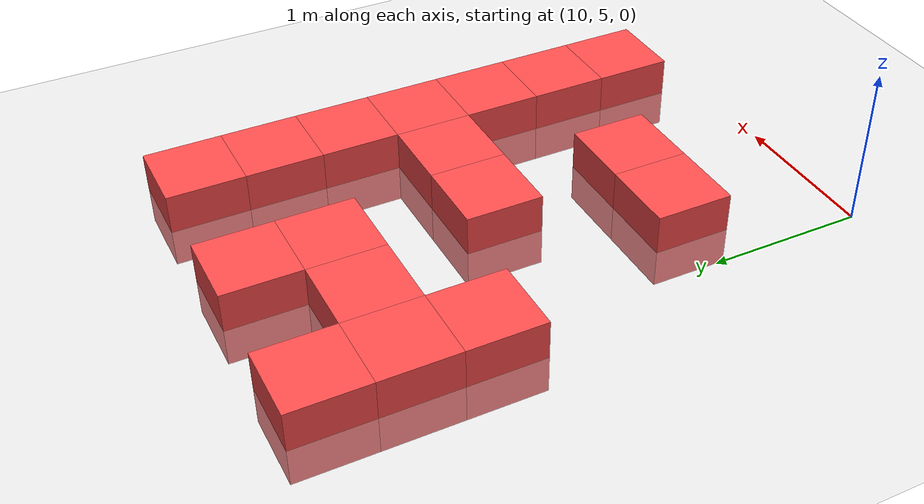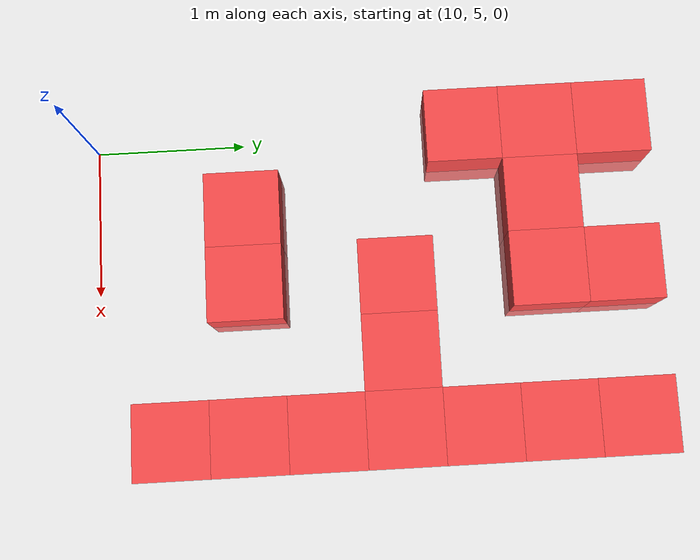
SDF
<sdf version="1.6">
 <world name="default">
  <model name="ground_plane">
   <static>1</static>
   <link name="link">
    <collision name="collision">
     <geometry><plane><normal>0 0 1</normal><size>100 100</size></plane></geometry>
     <surface><friction><ode><mu>100</mu><mu2>50</mu2></ode></friction></surface>
    </collision>
    <visual name="visual">
     <cast_shadows>0</cast_shadows>
     <geometry><plane><normal>0 0 1</normal><size>100 100</size></plane></geometry>
     <material>
      <script><uri>file://media/materials/scripts/gazebo.material</uri><name>Gazebo/Grey</name></script>
     </material>
    </visual>
   </link>
  </model>
  <model name="Box_Red_515">
   <link name="link_0">
    <inertial>
     <mass>1</mass>
     <inertia>
      <ixx>0.166667</ixx>
      <ixy>0</ixy>
      <ixz>0</ixz>
      <iyy>0.166667</iyy>
      <iyz>0</iyz>
      <izz>0.166667</izz>
     </inertia>
    </inertial>
    <visual name="visual">
     <geometry><box><size>0.5 0.5 0.5</size></box></geometry>
     <material>
      <lighting>1</lighting>
      <script><uri>file://media/materials/scripts/gazebo.material</uri><name>Gazebo/Grey</name></script>
      <ambient>1 0.3 0.3 1</ambient>
      <diffuse>0.7 0.7 0.7 1</diffuse>
      <specular>0.01 0.01 0.01 1</specular>
      <emissive>0 0 0 1</emissive>
      <shader type="vertex"><normal_map>__default__</normal_map></shader>
     </material>
    </visual>
    <collision name="collision">
     <geometry><box><size>0.5 0.5 0.5</size></box></geometry>
     <surface>
      <friction>
       <ode><mu>1</mu><mu2>1</mu2><fdir1>0 0 0</fdir1><slip1>0</slip1><slip2>0</slip2></ode>
       <torsional>
        <coefficient>1</coefficient>
        <patch_radius>0</patch_radius>
        <surface_radius>0</surface_radius>
        <use_patch_radius>1</use_patch_radius>
        <ode><slip>0</slip></ode>
       </torsional>
      </friction>
      <bounce><restitution_coefficient>0</restitution_coefficient><threshold>1e+06</threshold></bounce>
      <contact>
       <collide_without_contact>0</collide_without_contact>
       <collide_without_contact_bitmask>1</collide_without_contact_bitmask>
       <collide_bitmask>1</collide_bitmask>
       <ode>
        <soft_cfm>0</soft_cfm>
        <soft_erp>0.2</soft_erp>
        <kp>1e+13</kp>
        <kd>1</kd>
        <max_vel>0.01</max_vel>
        <min_depth>0</min_depth>
       </ode>
       <bullet>
        <split_impulse>1</split_impulse>
        <split_impulse_penetration_threshold>-0.01</split_impulse_penetration_threshold>
        <soft_cfm>0</soft_cfm>
        <soft_erp>0.2</soft_erp>
        <kp>1e+13</kp>
        <kd>1</kd>
       </bullet>
      </contact>
     </surface>
    </collision>
   </link>
   <static>0</static>
   <pose>10.000 7.500 0.000 0 0 0</pose>
  </model>
  <model name="Box_Red_516">
   <link name="link_0">
    <inertial>
     <mass>1</mass>
     <inertia>
      <ixx>0.166667</ixx>
      <ixy>0</ixy>
      <ixz>0</ixz>
      <iyy>0.166667</iyy>
      <iyz>0</iyz>
      <izz>0.166667</izz>
     </inertia>
    </inertial>
    <visual name="visual">
     <geometry><box><size>0.5 0.5 0.5</size></box></geometry>
     <material>
      <lighting>1</lighting>
      <script><uri>file://media/materials/scripts/gazebo.material</uri><name>Gazebo/Grey</name></script>
      <ambient>1 0.3 0.3 1</ambient>
      <diffuse>0.7 0.7 0.7 1</diffuse>
      <specular>0.01 0.01 0.01 1</specular>
      <emissive>0 0 0 1</emissive>
      <shader type="vertex"><normal_map>__default__</normal_map></shader>
     </material>
    </visual>
    <collision name="collision">
     <geometry><box><size>0.5 0.5 0.5</size></box></geometry>
     <surface>
      <friction>
       <ode><mu>1</mu><mu2>1</mu2><fdir1>0 0 0</fdir1><slip1>0</slip1><slip2>0</slip2></ode>
       <torsional>
        <coefficient>1</coefficient>
        <patch_radius>0</patch_radius>
        <surface_radius>0</surface_radius>
        <use_patch_radius>1</use_patch_radius>
        <ode><slip>0</slip></ode>
       </torsional>
      </friction>
      <bounce><restitution_coefficient>0</restitution_coefficient><threshold>1e+06</threshold></bounce>
      <contact>
       <collide_without_contact>0</collide_without_contact>
       <collide_without_contact_bitmask>1</collide_without_contact_bitmask>
       <collide_bitmask>1</collide_bitmask>
       <ode>
        <soft_cfm>0</soft_cfm>
        <soft_erp>0.2</soft_erp>
        <kp>1e+13</kp>
        <kd>1</kd>
        <max_vel>0.01</max_vel>
        <min_depth>0</min_depth>
       </ode>
       <bullet>
        <split_impulse>1</split_impulse>
        <split_impulse_penetration_threshold>-0.01</split_impulse_penetration_threshold>
        <soft_cfm>0</soft_cfm>
        <soft_erp>0.2</soft_erp>
        <kp>1e+13</kp>
        <kd>1</kd>
       </bullet>
      </contact>
     </surface>
    </collision>
   </link>
   <static>0</static>
   <pose>10.000 8.000 0.000 0 0 0</pose>
  </model>
  <model name="Box_Red_517">
   <link name="link_0">
    <inertial>
     <mass>1</mass>
     <inertia>
      <ixx>0.166667</ixx>
      <ixy>0</ixy>
      <ixz>0</ixz>
      <iyy>0.166667</iyy>
      <iyz>0</iyz>
      <izz>0.166667</izz>
     </inertia>
    </inertial>
    <visual name="visual">
     <geometry><box><size>0.5 0.5 0.5</size></box></geometry>
     <material>
      <lighting>1</lighting>
      <script><uri>file://media/materials/scripts/gazebo.material</uri><name>Gazebo/Grey</name></script>
      <ambient>1 0.3 0.3 1</ambient>
      <diffuse>0.7 0.7 0.7 1</diffuse>
      <specular>0.01 0.01 0.01 1</specular>
      <emissive>0 0 0 1</emissive>
      <shader type="vertex"><normal_map>__default__</normal_map></shader>
     </material>
    </visual>
    <collision name="collision">
     <geometry><box><size>0.5 0.5 0.5</size></box></geometry>
     <surface>
      <friction>
       <ode><mu>1</mu><mu2>1</mu2><fdir1>0 0 0</fdir1><slip1>0</slip1><slip2>0</slip2></ode>
       <torsional>
        <coefficient>1</coefficient>
        <patch_radius>0</patch_radius>
        <surface_radius>0</surface_radius>
        <use_patch_radius>1</use_patch_radius>
        <ode><slip>0</slip></ode>
       </torsional>
      </friction>
      <bounce><restitution_coefficient>0</restitution_coefficient><threshold>1e+06</threshold></bounce>
      <contact>
       <collide_without_contact>0</collide_without_contact>
       <collide_without_contact_bitmask>1</collide_without_contact_bitmask>
       <collide_bitmask>1</collide_bitmask>
       <ode>
        <soft_cfm>0</soft_cfm>
        <soft_erp>0.2</soft_erp>
        <kp>1e+13</kp>
        <kd>1</kd>
        <max_vel>0.01</max_vel>
        <min_depth>0</min_depth>
       </ode>
       <bullet>
        <split_impulse>1</split_impulse>
        <split_impulse_penetration_threshold>-0.01</split_impulse_penetration_threshold>
        <soft_cfm>0</soft_cfm>
        <soft_erp>0.2</soft_erp>
        <kp>1e+13</kp>
        <kd>1</kd>
       </bullet>
      </contact>
     </surface>
    </collision>
   </link>
   <static>0</static>
   <pose>10.000 8.500 0.000 0 0 0</pose>
  </model>
  <model name="Box_Red_537">
   <link name="link_0">
    <inertial>
     <mass>1</mass>
     <inertia>
      <ixx>0.166667</ixx>
      <ixy>0</ixy>
      <ixz>0</ixz>
      <iyy>0.166667</iyy>
      <iyz>0</iyz>
      <izz>0.166667</izz>
     </inertia>
    </inertial>
    <visual name="visual">
     <geometry><box><size>0.5 0.5 0.5</size></box></geometry>
     <material>
      <lighting>1</lighting>
      <script><uri>file://media/materials/scripts/gazebo.material</uri><name>Gazebo/Grey</name></script>
      <ambient>1 0.3 0.3 1</ambient>
      <diffuse>0.7 0.7 0.7 1</diffuse>
      <specular>0.01 0.01 0.01 1</specular>
      <emissive>0 0 0 1</emissive>
      <shader type="vertex"><normal_map>__default__</normal_map></shader>
     </material>
    </visual>
    <collision name="collision">
     <geometry><box><size>0.5 0.5 0.5</size></box></geometry>
     <surface>
      <friction>
       <ode><mu>1</mu><mu2>1</mu2><fdir1>0 0 0</fdir1><slip1>0</slip1><slip2>0</slip2></ode>
       <torsional>
        <coefficient>1</coefficient>
        <patch_radius>0</patch_radius>
        <surface_radius>0</surface_radius>
        <use_patch_radius>1</use_patch_radius>
        <ode><slip>0</slip></ode>
       </torsional>
      </friction>
      <bounce><restitution_coefficient>0</restitution_coefficient><threshold>1e+06</threshold></bounce>
      <contact>
       <collide_without_contact>0</collide_without_contact>
       <collide_without_contact_bitmask>1</collide_without_contact_bitmask>
       <collide_bitmask>1</collide_bitmask>
       <ode>
        <soft_cfm>0</soft_cfm>
        <soft_erp>0.2</soft_erp>
        <kp>1e+13</kp>
        <kd>1</kd>
        <max_vel>0.01</max_vel>
        <min_depth>0</min_depth>
       </ode>
       <bullet>
        <split_impulse>1</split_impulse>
        <split_impulse_penetration_threshold>-0.01</split_impulse_penetration_threshold>
        <soft_cfm>0</soft_cfm>
        <soft_erp>0.2</soft_erp>
        <kp>1e+13</kp>
        <kd>1</kd>
       </bullet>
      </contact>
     </surface>
    </collision>
   </link>
   <static>0</static>
   <pose>10.500 6.000 0.000 0 0 0</pose>
  </model>
  <model name="Box_Red_541">
   <link name="link_0">
    <inertial>
     <mass>1</mass>
     <inertia>
      <ixx>0.166667</ixx>
      <ixy>0</ixy>
      <ixz>0</ixz>
      <iyy>0.166667</iyy>
      <iyz>0</iyz>
      <izz>0.166667</izz>
     </inertia>
    </inertial>
    <visual name="visual">
     <geometry><box><size>0.5 0.5 0.5</size></box></geometry>
     <material>
      <lighting>1</lighting>
      <script><uri>file://media/materials/scripts/gazebo.material</uri><name>Gazebo/Grey</name></script>
      <ambient>1 0.3 0.3 1</ambient>
      <diffuse>0.7 0.7 0.7 1</diffuse>
      <specular>0.01 0.01 0.01 1</specular>
      <emissive>0 0 0 1</emissive>
      <shader type="vertex"><normal_map>__default__</normal_map></shader>
     </material>
    </visual>
    <collision name="collision">
     <geometry><box><size>0.5 0.5 0.5</size></box></geometry>
     <surface>
      <friction>
       <ode><mu>1</mu><mu2>1</mu2><fdir1>0 0 0</fdir1><slip1>0</slip1><slip2>0</slip2></ode>
       <torsional>
        <coefficient>1</coefficient>
        <patch_radius>0</patch_radius>
        <surface_radius>0</surface_radius>
        <use_patch_radius>1</use_patch_radius>
        <ode><slip>0</slip></ode>
       </torsional>
      </friction>
      <bounce><restitution_coefficient>0</restitution_coefficient><threshold>1e+06</threshold></bounce>
      <contact>
       <collide_without_contact>0</collide_without_contact>
       <collide_without_contact_bitmask>1</collide_without_contact_bitmask>
       <collide_bitmask>1</collide_bitmask>
       <ode>
        <soft_cfm>0</soft_cfm>
        <soft_erp>0.2</soft_erp>
        <kp>1e+13</kp>
        <kd>1</kd>
        <max_vel>0.01</max_vel>
        <min_depth>0</min_depth>
       </ode>
       <bullet>
        <split_impulse>1</split_impulse>
        <split_impulse_penetration_threshold>-0.01</split_impulse_penetration_threshold>
        <soft_cfm>0</soft_cfm>
        <soft_erp>0.2</soft_erp>
        <kp>1e+13</kp>
        <kd>1</kd>
       </bullet>
      </contact>
     </surface>
    </collision>
   </link>
   <static>0</static>
   <pose>10.500 8.000 0.000 0 0 0</pose>
  </model>
  <model name="Box_Red_562">
   <link name="link_0">
    <inertial>
     <mass>1</mass>
     <inertia>
      <ixx>0.166667</ixx>
      <ixy>0</ixy>
      <ixz>0</ixz>
      <iyy>0.166667</iyy>
      <iyz>0</iyz>
      <izz>0.166667</izz>
     </inertia>
    </inertial>
    <visual name="visual">
     <geometry><box><size>0.5 0.5 0.5</size></box></geometry>
     <material>
      <lighting>1</lighting>
      <script><uri>file://media/materials/scripts/gazebo.material</uri><name>Gazebo/Grey</name></script>
      <ambient>1 0.3 0.3 1</ambient>
      <diffuse>0.7 0.7 0.7 1</diffuse>
      <specular>0.01 0.01 0.01 1</specular>
      <emissive>0 0 0 1</emissive>
      <shader type="vertex"><normal_map>__default__</normal_map></shader>
     </material>
    </visual>
    <collision name="collision">
     <geometry><box><size>0.5 0.5 0.5</size></box></geometry>
     <surface>
      <friction>
       <ode><mu>1</mu><mu2>1</mu2><fdir1>0 0 0</fdir1><slip1>0</slip1><slip2>0</slip2></ode>
       <torsional>
        <coefficient>1</coefficient>
        <patch_radius>0</patch_radius>
        <surface_radius>0</surface_radius>
        <use_patch_radius>1</use_patch_radius>
        <ode><slip>0</slip></ode>
       </torsional>
      </friction>
      <bounce><restitution_coefficient>0</restitution_coefficient><threshold>1e+06</threshold></bounce>
      <contact>
       <collide_without_contact>0</collide_without_contact>
       <collide_without_contact_bitmask>1</collide_without_contact_bitmask>
       <collide_bitmask>1</collide_bitmask>
       <ode>
        <soft_cfm>0</soft_cfm>
        <soft_erp>0.2</soft_erp>
        <kp>1e+13</kp>
        <kd>1</kd>
        <max_vel>0.01</max_vel>
        <min_depth>0</min_depth>
       </ode>
       <bullet>
        <split_impulse>1</split_impulse>
        <split_impulse_penetration_threshold>-0.01</split_impulse_penetration_threshold>
        <soft_cfm>0</soft_cfm>
        <soft_erp>0.2</soft_erp>
        <kp>1e+13</kp>
        <kd>1</kd>
       </bullet>
      </contact>
     </surface>
    </collision>
   </link>
   <static>0</static>
   <pose>11.000 6.000 0.000 0 0 0</pose>
  </model>
  <model name="Box_Red_564">
   <link name="link_0">
    <inertial>
     <mass>1</mass>
     <inertia>
      <ixx>0.166667</ixx>
      <ixy>0</ixy>
      <ixz>0</ixz>
      <iyy>0.166667</iyy>
      <iyz>0</iyz>
      <izz>0.166667</izz>
     </inertia>
    </inertial>
    <visual name="visual">
     <geometry><box><size>0.5 0.5 0.5</size></box></geometry>
     <material>
      <lighting>1</lighting>
      <script><uri>file://media/materials/scripts/gazebo.material</uri><name>Gazebo/Grey</name></script>
      <ambient>1 0.3 0.3 1</ambient>
      <diffuse>0.7 0.7 0.7 1</diffuse>
      <specular>0.01 0.01 0.01 1</specular>
      <emissive>0 0 0 1</emissive>
      <shader type="vertex"><normal_map>__default__</normal_map></shader>
     </material>
    </visual>
    <collision name="collision">
     <geometry><box><size>0.5 0.5 0.5</size></box></geometry>
     <surface>
      <friction>
       <ode><mu>1</mu><mu2>1</mu2><fdir1>0 0 0</fdir1><slip1>0</slip1><slip2>0</slip2></ode>
       <torsional>
        <coefficient>1</coefficient>
        <patch_radius>0</patch_radius>
        <surface_radius>0</surface_radius>
        <use_patch_radius>1</use_patch_radius>
        <ode><slip>0</slip></ode>
       </torsional>
      </friction>
      <bounce><restitution_coefficient>0</restitution_coefficient><threshold>1e+06</threshold></bounce>
      <contact>
       <collide_without_contact>0</collide_without_contact>
       <collide_without_contact_bitmask>1</collide_without_contact_bitmask>
       <collide_bitmask>1</collide_bitmask>
       <ode>
        <soft_cfm>0</soft_cfm>
        <soft_erp>0.2</soft_erp>
        <kp>1e+13</kp>
        <kd>1</kd>
        <max_vel>0.01</max_vel>
        <min_depth>0</min_depth>
       </ode>
       <bullet>
        <split_impulse>1</split_impulse>
        <split_impulse_penetration_threshold>-0.01</split_impulse_penetration_threshold>
        <soft_cfm>0</soft_cfm>
        <soft_erp>0.2</soft_erp>
        <kp>1e+13</kp>
        <kd>1</kd>
       </bullet>
      </contact>
     </surface>
    </collision>
   </link>
   <static>0</static>
   <pose>11.000 7.000 0.000 0 0 0</pose>
  </model>
  <model name="Box_Red_566">
   <link name="link_0">
    <inertial>
     <mass>1</mass>
     <inertia>
      <ixx>0.166667</ixx>
      <ixy>0</ixy>
      <ixz>0</ixz>
      <iyy>0.166667</iyy>
      <iyz>0</iyz>
      <izz>0.166667</izz>
     </inertia>
    </inertial>
    <visual name="visual">
     <geometry><box><size>0.5 0.5 0.5</size></box></geometry>
     <material>
      <lighting>1</lighting>
      <script><uri>file://media/materials/scripts/gazebo.material</uri><name>Gazebo/Grey</name></script>
      <ambient>1 0.3 0.3 1</ambient>
      <diffuse>0.7 0.7 0.7 1</diffuse>
      <specular>0.01 0.01 0.01 1</specular>
      <emissive>0 0 0 1</emissive>
      <shader type="vertex"><normal_map>__default__</normal_map></shader>
     </material>
    </visual>
    <collision name="collision">
     <geometry><box><size>0.5 0.5 0.5</size></box></geometry>
     <surface>
      <friction>
       <ode><mu>1</mu><mu2>1</mu2><fdir1>0 0 0</fdir1><slip1>0</slip1><slip2>0</slip2></ode>
       <torsional>
        <coefficient>1</coefficient>
        <patch_radius>0</patch_radius>
        <surface_radius>0</surface_radius>
        <use_patch_radius>1</use_patch_radius>
        <ode><slip>0</slip></ode>
       </torsional>
      </friction>
      <bounce><restitution_coefficient>0</restitution_coefficient><threshold>1e+06</threshold></bounce>
      <contact>
       <collide_without_contact>0</collide_without_contact>
       <collide_without_contact_bitmask>1</collide_without_contact_bitmask>
       <collide_bitmask>1</collide_bitmask>
       <ode>
        <soft_cfm>0</soft_cfm>
        <soft_erp>0.2</soft_erp>
        <kp>1e+13</kp>
        <kd>1</kd>
        <max_vel>0.01</max_vel>
        <min_depth>0</min_depth>
       </ode>
       <bullet>
        <split_impulse>1</split_impulse>
        <split_impulse_penetration_threshold>-0.01</split_impulse_penetration_threshold>
        <soft_cfm>0</soft_cfm>
        <soft_erp>0.2</soft_erp>
        <kp>1e+13</kp>
        <kd>1</kd>
       </bullet>
      </contact>
     </surface>
    </collision>
   </link>
   <static>0</static>
   <pose>11.000 8.000 0.000 0 0 0</pose>
  </model>
  <model name="Box_Red_567">
   <link name="link_0">
    <inertial>
     <mass>1</mass>
     <inertia>
      <ixx>0.166667</ixx>
      <ixy>0</ixy>
      <ixz>0</ixz>
      <iyy>0.166667</iyy>
      <iyz>0</iyz>
      <izz>0.166667</izz>
     </inertia>
    </inertial>
    <visual name="visual">
     <geometry><box><size>0.5 0.5 0.5</size></box></geometry>
     <material>
      <lighting>1</lighting>
      <script><uri>file://media/materials/scripts/gazebo.material</uri><name>Gazebo/Grey</name></script>
      <ambient>1 0.3 0.3 1</ambient>
      <diffuse>0.7 0.7 0.7 1</diffuse>
      <specular>0.01 0.01 0.01 1</specular>
      <emissive>0 0 0 1</emissive>
      <shader type="vertex"><normal_map>__default__</normal_map></shader>
     </material>
    </visual>
    <collision name="collision">
     <geometry><box><size>0.5 0.5 0.5</size></box></geometry>
     <surface>
      <friction>
       <ode><mu>1</mu><mu2>1</mu2><fdir1>0 0 0</fdir1><slip1>0</slip1><slip2>0</slip2></ode>
       <torsional>
        <coefficient>1</coefficient>
        <patch_radius>0</patch_radius>
        <surface_radius>0</surface_radius>
        <use_patch_radius>1</use_patch_radius>
        <ode><slip>0</slip></ode>
       </torsional>
      </friction>
      <bounce><restitution_coefficient>0</restitution_coefficient><threshold>1e+06</threshold></bounce>
      <contact>
       <collide_without_contact>0</collide_without_contact>
       <collide_without_contact_bitmask>1</collide_without_contact_bitmask>
       <collide_bitmask>1</collide_bitmask>
       <ode>
        <soft_cfm>0</soft_cfm>
        <soft_erp>0.2</soft_erp>
        <kp>1e+13</kp>
        <kd>1</kd>
        <max_vel>0.01</max_vel>
        <min_depth>0</min_depth>
       </ode>
       <bullet>
        <split_impulse>1</split_impulse>
        <split_impulse_penetration_threshold>-0.01</split_impulse_penetration_threshold>
        <soft_cfm>0</soft_cfm>
        <soft_erp>0.2</soft_erp>
        <kp>1e+13</kp>
        <kd>1</kd>
       </bullet>
      </contact>
     </surface>
    </collision>
   </link>
   <static>0</static>
   <pose>11.000 8.500 0.000 0 0 0</pose>
  </model>
  <model name="Box_Red_589">
   <link name="link_0">
    <inertial>
     <mass>1</mass>
     <inertia>
      <ixx>0.166667</ixx>
      <ixy>0</ixy>
      <ixz>0</ixz>
      <iyy>0.166667</iyy>
      <iyz>0</iyz>
      <izz>0.166667</izz>
     </inertia>
    </inertial>
    <visual name="visual">
     <geometry><box><size>0.5 0.5 0.5</size></box></geometry>
     <material>
      <lighting>1</lighting>
      <script><uri>file://media/materials/scripts/gazebo.material</uri><name>Gazebo/Grey</name></script>
      <ambient>1 0.3 0.3 1</ambient>
      <diffuse>0.7 0.7 0.7 1</diffuse>
      <specular>0.01 0.01 0.01 1</specular>
      <emissive>0 0 0 1</emissive>
      <shader type="vertex"><normal_map>__default__</normal_map></shader>
     </material>
    </visual>
    <collision name="collision">
     <geometry><box><size>0.5 0.5 0.5</size></box></geometry>
     <surface>
      <friction>
       <ode><mu>1</mu><mu2>1</mu2><fdir1>0 0 0</fdir1><slip1>0</slip1><slip2>0</slip2></ode>
       <torsional>
        <coefficient>1</coefficient>
        <patch_radius>0</patch_radius>
        <surface_radius>0</surface_radius>
        <use_patch_radius>1</use_patch_radius>
        <ode><slip>0</slip></ode>
       </torsional>
      </friction>
      <bounce><restitution_coefficient>0</restitution_coefficient><threshold>1e+06</threshold></bounce>
      <contact>
       <collide_without_contact>0</collide_without_contact>
       <collide_without_contact_bitmask>1</collide_without_contact_bitmask>
       <collide_bitmask>1</collide_bitmask>
       <ode>
        <soft_cfm>0</soft_cfm>
        <soft_erp>0.2</soft_erp>
        <kp>1e+13</kp>
        <kd>1</kd>
        <max_vel>0.01</max_vel>
        <min_depth>0</min_depth>
       </ode>
       <bullet>
        <split_impulse>1</split_impulse>
        <split_impulse_penetration_threshold>-0.01</split_impulse_penetration_threshold>
        <soft_cfm>0</soft_cfm>
        <soft_erp>0.2</soft_erp>
        <kp>1e+13</kp>
        <kd>1</kd>
       </bullet>
      </contact>
     </surface>
    </collision>
   </link>
   <static>0</static>
   <pose>11.500 7.000 0.000 0 0 0</pose>
  </model>
  <model name="Box_Red_611">
   <link name="link_0">
    <inertial>
     <mass>1</mass>
     <inertia>
      <ixx>0.166667</ixx>
      <ixy>0</ixy>
      <ixz>0</ixz>
      <iyy>0.166667</iyy>
      <iyz>0</iyz>
      <izz>0.166667</izz>
     </inertia>
    </inertial>
    <visual name="visual">
     <geometry><box><size>0.5 0.5 0.5</size></box></geometry>
     <material>
      <lighting>1</lighting>
      <script><uri>file://media/materials/scripts/gazebo.material</uri><name>Gazebo/Grey</name></script>
      <ambient>1 0.3 0.3 1</ambient>
      <diffuse>0.7 0.7 0.7 1</diffuse>
      <specular>0.01 0.01 0.01 1</specular>
      <emissive>0 0 0 1</emissive>
      <shader type="vertex"><normal_map>__default__</normal_map></shader>
     </material>
    </visual>
    <collision name="collision">
     <geometry><box><size>0.5 0.5 0.5</size></box></geometry>
     <surface>
      <friction>
       <ode><mu>1</mu><mu2>1</mu2><fdir1>0 0 0</fdir1><slip1>0</slip1><slip2>0</slip2></ode>
       <torsional>
        <coefficient>1</coefficient>
        <patch_radius>0</patch_radius>
        <surface_radius>0</surface_radius>
        <use_patch_radius>1</use_patch_radius>
        <ode><slip>0</slip></ode>
       </torsional>
      </friction>
      <bounce><restitution_coefficient>0</restitution_coefficient><threshold>1e+06</threshold></bounce>
      <contact>
       <collide_without_contact>0</collide_without_contact>
       <collide_without_contact_bitmask>1</collide_without_contact_bitmask>
       <collide_bitmask>1</collide_bitmask>
       <ode>
        <soft_cfm>0</soft_cfm>
        <soft_erp>0.2</soft_erp>
        <kp>1e+13</kp>
        <kd>1</kd>
        <max_vel>0.01</max_vel>
        <min_depth>0</min_depth>
       </ode>
       <bullet>
        <split_impulse>1</split_impulse>
        <split_impulse_penetration_threshold>-0.01</split_impulse_penetration_threshold>
        <soft_cfm>0</soft_cfm>
        <soft_erp>0.2</soft_erp>
        <kp>1e+13</kp>
        <kd>1</kd>
       </bullet>
      </contact>
     </surface>
    </collision>
   </link>
   <static>0</static>
   <pose>12.000 5.500 0.000 0 0 0</pose>
  </model>
  <model name="Box_Red_612">
   <link name="link_0">
    <inertial>
     <mass>1</mass>
     <inertia>
      <ixx>0.166667</ixx>
      <ixy>0</ixy>
      <ixz>0</ixz>
      <iyy>0.166667</iyy>
      <iyz>0</iyz>
      <izz>0.166667</izz>
     </inertia>
    </inertial>
    <visual name="visual">
     <geometry><box><size>0.5 0.5 0.5</size></box></geometry>
     <material>
      <lighting>1</lighting>
      <script><uri>file://media/materials/scripts/gazebo.material</uri><name>Gazebo/Grey</name></script>
      <ambient>1 0.3 0.3 1</ambient>
      <diffuse>0.7 0.7 0.7 1</diffuse>
      <specular>0.01 0.01 0.01 1</specular>
      <emissive>0 0 0 1</emissive>
      <shader type="vertex"><normal_map>__default__</normal_map></shader>
     </material>
    </visual>
    <collision name="collision">
     <geometry><box><size>0.5 0.5 0.5</size></box></geometry>
     <surface>
      <friction>
       <ode><mu>1</mu><mu2>1</mu2><fdir1>0 0 0</fdir1><slip1>0</slip1><slip2>0</slip2></ode>
       <torsional>
        <coefficient>1</coefficient>
        <patch_radius>0</patch_radius>
        <surface_radius>0</surface_radius>
        <use_patch_radius>1</use_patch_radius>
        <ode><slip>0</slip></ode>
       </torsional>
      </friction>
      <bounce><restitution_coefficient>0</restitution_coefficient><threshold>1e+06</threshold></bounce>
      <contact>
       <collide_without_contact>0</collide_without_contact>
       <collide_without_contact_bitmask>1</collide_without_contact_bitmask>
       <collide_bitmask>1</collide_bitmask>
       <ode>
        <soft_cfm>0</soft_cfm>
        <soft_erp>0.2</soft_erp>
        <kp>1e+13</kp>
        <kd>1</kd>
        <max_vel>0.01</max_vel>
        <min_depth>0</min_depth>
       </ode>
       <bullet>
        <split_impulse>1</split_impulse>
        <split_impulse_penetration_threshold>-0.01</split_impulse_penetration_threshold>
        <soft_cfm>0</soft_cfm>
        <soft_erp>0.2</soft_erp>
        <kp>1e+13</kp>
        <kd>1</kd>
       </bullet>
      </contact>
     </surface>
    </collision>
   </link>
   <static>0</static>
   <pose>12.000 6.000 0.000 0 0 0</pose>
  </model>
  <model name="Box_Red_613">
   <link name="link_0">
    <inertial>
     <mass>1</mass>
     <inertia>
      <ixx>0.166667</ixx>
      <ixy>0</ixy>
      <ixz>0</ixz>
      <iyy>0.166667</iyy>
      <iyz>0</iyz>
      <izz>0.166667</izz>
     </inertia>
    </inertial>
    <visual name="visual">
     <geometry><box><size>0.5 0.5 0.5</size></box></geometry>
     <material>
      <lighting>1</lighting>
      <script><uri>file://media/materials/scripts/gazebo.material</uri><name>Gazebo/Grey</name></script>
      <ambient>1 0.3 0.3 1</ambient>
      <diffuse>0.7 0.7 0.7 1</diffuse>
      <specular>0.01 0.01 0.01 1</specular>
      <emissive>0 0 0 1</emissive>
      <shader type="vertex"><normal_map>__default__</normal_map></shader>
     </material>
    </visual>
    <collision name="collision">
     <geometry><box><size>0.5 0.5 0.5</size></box></geometry>
     <surface>
      <friction>
       <ode><mu>1</mu><mu2>1</mu2><fdir1>0 0 0</fdir1><slip1>0</slip1><slip2>0</slip2></ode>
       <torsional>
        <coefficient>1</coefficient>
        <patch_radius>0</patch_radius>
        <surface_radius>0</surface_radius>
        <use_patch_radius>1</use_patch_radius>
        <ode><slip>0</slip></ode>
       </torsional>
      </friction>
      <bounce><restitution_coefficient>0</restitution_coefficient><threshold>1e+06</threshold></bounce>
      <contact>
       <collide_without_contact>0</collide_without_contact>
       <collide_without_contact_bitmask>1</collide_without_contact_bitmask>
       <collide_bitmask>1</collide_bitmask>
       <ode>
        <soft_cfm>0</soft_cfm>
        <soft_erp>0.2</soft_erp>
        <kp>1e+13</kp>
        <kd>1</kd>
        <max_vel>0.01</max_vel>
        <min_depth>0</min_depth>
       </ode>
       <bullet>
        <split_impulse>1</split_impulse>
        <split_impulse_penetration_threshold>-0.01</split_impulse_penetration_threshold>
        <soft_cfm>0</soft_cfm>
        <soft_erp>0.2</soft_erp>
        <kp>1e+13</kp>
        <kd>1</kd>
       </bullet>
      </contact>
     </surface>
    </collision>
   </link>
   <static>0</static>
   <pose>12.000 6.500 0.000 0 0 0</pose>
  </model>
  <model name="Box_Red_614">
   <link name="link_0">
    <inertial>
     <mass>1</mass>
     <inertia>
      <ixx>0.166667</ixx>
      <ixy>0</ixy>
      <ixz>0</ixz>
      <iyy>0.166667</iyy>
      <iyz>0</iyz>
      <izz>0.166667</izz>
     </inertia>
    </inertial>
    <visual name="visual">
     <geometry><box><size>0.5 0.5 0.5</size></box></geometry>
     <material>
      <lighting>1</lighting>
      <script><uri>file://media/materials/scripts/gazebo.material</uri><name>Gazebo/Grey</name></script>
      <ambient>1 0.3 0.3 1</ambient>
      <diffuse>0.7 0.7 0.7 1</diffuse>
      <specular>0.01 0.01 0.01 1</specular>
      <emissive>0 0 0 1</emissive>
      <shader type="vertex"><normal_map>__default__</normal_map></shader>
     </material>
    </visual>
    <collision name="collision">
     <geometry><box><size>0.5 0.5 0.5</size></box></geometry>
     <surface>
      <friction>
       <ode><mu>1</mu><mu2>1</mu2><fdir1>0 0 0</fdir1><slip1>0</slip1><slip2>0</slip2></ode>
       <torsional>
        <coefficient>1</coefficient>
        <patch_radius>0</patch_radius>
        <surface_radius>0</surface_radius>
        <use_patch_radius>1</use_patch_radius>
        <ode><slip>0</slip></ode>
       </torsional>
      </friction>
      <bounce><restitution_coefficient>0</restitution_coefficient><threshold>1e+06</threshold></bounce>
      <contact>
       <collide_without_contact>0</collide_without_contact>
       <collide_without_contact_bitmask>1</collide_without_contact_bitmask>
       <collide_bitmask>1</collide_bitmask>
       <ode>
        <soft_cfm>0</soft_cfm>
        <soft_erp>0.2</soft_erp>
        <kp>1e+13</kp>
        <kd>1</kd>
        <max_vel>0.01</max_vel>
        <min_depth>0</min_depth>
       </ode>
       <bullet>
        <split_impulse>1</split_impulse>
        <split_impulse_penetration_threshold>-0.01</split_impulse_penetration_threshold>
        <soft_cfm>0</soft_cfm>
        <soft_erp>0.2</soft_erp>
        <kp>1e+13</kp>
        <kd>1</kd>
       </bullet>
      </contact>
     </surface>
    </collision>
   </link>
   <static>0</static>
   <pose>12.000 7.000 0.000 0 0 0</pose>
  </model>
  <model name="Box_Red_615">
   <link name="link_0">
    <inertial>
     <mass>1</mass>
     <inertia>
      <ixx>0.166667</ixx>
      <ixy>0</ixy>
      <ixz>0</ixz>
      <iyy>0.166667</iyy>
      <iyz>0</iyz>
      <izz>0.166667</izz>
     </inertia>
    </inertial>
    <visual name="visual">
     <geometry><box><size>0.5 0.5 0.5</size></box></geometry>
     <material>
      <lighting>1</lighting>
      <script><uri>file://media/materials/scripts/gazebo.material</uri><name>Gazebo/Grey</name></script>
      <ambient>1 0.3 0.3 1</ambient>
      <diffuse>0.7 0.7 0.7 1</diffuse>
      <specular>0.01 0.01 0.01 1</specular>
      <emissive>0 0 0 1</emissive>
      <shader type="vertex"><normal_map>__default__</normal_map></shader>
     </material>
    </visual>
    <collision name="collision">
     <geometry><box><size>0.5 0.5 0.5</size></box></geometry>
     <surface>
      <friction>
       <ode><mu>1</mu><mu2>1</mu2><fdir1>0 0 0</fdir1><slip1>0</slip1><slip2>0</slip2></ode>
       <torsional>
        <coefficient>1</coefficient>
        <patch_radius>0</patch_radius>
        <surface_radius>0</surface_radius>
        <use_patch_radius>1</use_patch_radius>
        <ode><slip>0</slip></ode>
       </torsional>
      </friction>
      <bounce><restitution_coefficient>0</restitution_coefficient><threshold>1e+06</threshold></bounce>
      <contact>
       <collide_without_contact>0</collide_without_contact>
       <collide_without_contact_bitmask>1</collide_without_contact_bitmask>
       <collide_bitmask>1</collide_bitmask>
       <ode>
        <soft_cfm>0</soft_cfm>
        <soft_erp>0.2</soft_erp>
        <kp>1e+13</kp>
        <kd>1</kd>
        <max_vel>0.01</max_vel>
        <min_depth>0</min_depth>
       </ode>
       <bullet>
        <split_impulse>1</split_impulse>
        <split_impulse_penetration_threshold>-0.01</split_impulse_penetration_threshold>
        <soft_cfm>0</soft_cfm>
        <soft_erp>0.2</soft_erp>
        <kp>1e+13</kp>
        <kd>1</kd>
       </bullet>
      </contact>
     </surface>
    </collision>
   </link>
   <static>0</static>
   <pose>12.000 7.500 0.000 0 0 0</pose>
  </model>
  <model name="Box_Red_616">
   <link name="link_0">
    <inertial>
     <mass>1</mass>
     <inertia>
      <ixx>0.166667</ixx>
      <ixy>0</ixy>
      <ixz>0</ixz>
      <iyy>0.166667</iyy>
      <iyz>0</iyz>
      <izz>0.166667</izz>
     </inertia>
    </inertial>
    <visual name="visual">
     <geometry><box><size>0.5 0.5 0.5</size></box></geometry>
     <material>
      <lighting>1</lighting>
      <script><uri>file://media/materials/scripts/gazebo.material</uri><name>Gazebo/Grey</name></script>
      <ambient>1 0.3 0.3 1</ambient>
      <diffuse>0.7 0.7 0.7 1</diffuse>
      <specular>0.01 0.01 0.01 1</specular>
      <emissive>0 0 0 1</emissive>
      <shader type="vertex"><normal_map>__default__</normal_map></shader>
     </material>
    </visual>
    <collision name="collision">
     <geometry><box><size>0.5 0.5 0.5</size></box></geometry>
     <surface>
      <friction>
       <ode><mu>1</mu><mu2>1</mu2><fdir1>0 0 0</fdir1><slip1>0</slip1><slip2>0</slip2></ode>
       <torsional>
        <coefficient>1</coefficient>
        <patch_radius>0</patch_radius>
        <surface_radius>0</surface_radius>
        <use_patch_radius>1</use_patch_radius>
        <ode><slip>0</slip></ode>
       </torsional>
      </friction>
      <bounce><restitution_coefficient>0</restitution_coefficient><threshold>1e+06</threshold></bounce>
      <contact>
       <collide_without_contact>0</collide_without_contact>
       <collide_without_contact_bitmask>1</collide_without_contact_bitmask>
       <collide_bitmask>1</collide_bitmask>
       <ode>
        <soft_cfm>0</soft_cfm>
        <soft_erp>0.2</soft_erp>
        <kp>1e+13</kp>
        <kd>1</kd>
        <max_vel>0.01</max_vel>
        <min_depth>0</min_depth>
       </ode>
       <bullet>
        <split_impulse>1</split_impulse>
        <split_impulse_penetration_threshold>-0.01</split_impulse_penetration_threshold>
        <soft_cfm>0</soft_cfm>
        <soft_erp>0.2</soft_erp>
        <kp>1e+13</kp>
        <kd>1</kd>
       </bullet>
      </contact>
     </surface>
    </collision>
   </link>
   <static>0</static>
   <pose>12.000 8.000 0.000 0 0 0</pose>
  </model>
  <model name="Box_Red_617">
   <link name="link_0">
    <inertial>
     <mass>1</mass>
     <inertia>
      <ixx>0.166667</ixx>
      <ixy>0</ixy>
      <ixz>0</ixz>
      <iyy>0.166667</iyy>
      <iyz>0</iyz>
      <izz>0.166667</izz>
     </inertia>
    </inertial>
    <visual name="visual">
     <geometry><box><size>0.5 0.5 0.5</size></box></geometry>
     <material>
      <lighting>1</lighting>
      <script><uri>file://media/materials/scripts/gazebo.material</uri><name>Gazebo/Grey</name></script>
      <ambient>1 0.3 0.3 1</ambient>
      <diffuse>0.7 0.7 0.7 1</diffuse>
      <specular>0.01 0.01 0.01 1</specular>
      <emissive>0 0 0 1</emissive>
      <shader type="vertex"><normal_map>__default__</normal_map></shader>
     </material>
    </visual>
    <collision name="collision">
     <geometry><box><size>0.5 0.5 0.5</size></box></geometry>
     <surface>
      <friction>
       <ode><mu>1</mu><mu2>1</mu2><fdir1>0 0 0</fdir1><slip1>0</slip1><slip2>0</slip2></ode>
       <torsional>
        <coefficient>1</coefficient>
        <patch_radius>0</patch_radius>
        <surface_radius>0</surface_radius>
        <use_patch_radius>1</use_patch_radius>
        <ode><slip>0</slip></ode>
       </torsional>
      </friction>
      <bounce><restitution_coefficient>0</restitution_coefficient><threshold>1e+06</threshold></bounce>
      <contact>
       <collide_without_contact>0</collide_without_contact>
       <collide_without_contact_bitmask>1</collide_without_contact_bitmask>
       <collide_bitmask>1</collide_bitmask>
       <ode>
        <soft_cfm>0</soft_cfm>
        <soft_erp>0.2</soft_erp>
        <kp>1e+13</kp>
        <kd>1</kd>
        <max_vel>0.01</max_vel>
        <min_depth>0</min_depth>
       </ode>
       <bullet>
        <split_impulse>1</split_impulse>
        <split_impulse_penetration_threshold>-0.01</split_impulse_penetration_threshold>
        <soft_cfm>0</soft_cfm>
        <soft_erp>0.2</soft_erp>
        <kp>1e+13</kp>
        <kd>1</kd>
       </bullet>
      </contact>
     </surface>
    </collision>
   </link>
   <static>0</static>
   <pose>12.000 8.500 0.000 0 0 0</pose>
  </model>
 </world>
</sdf>
